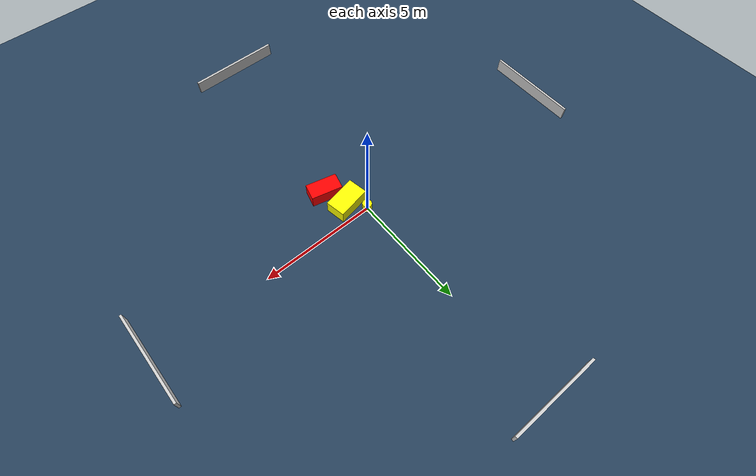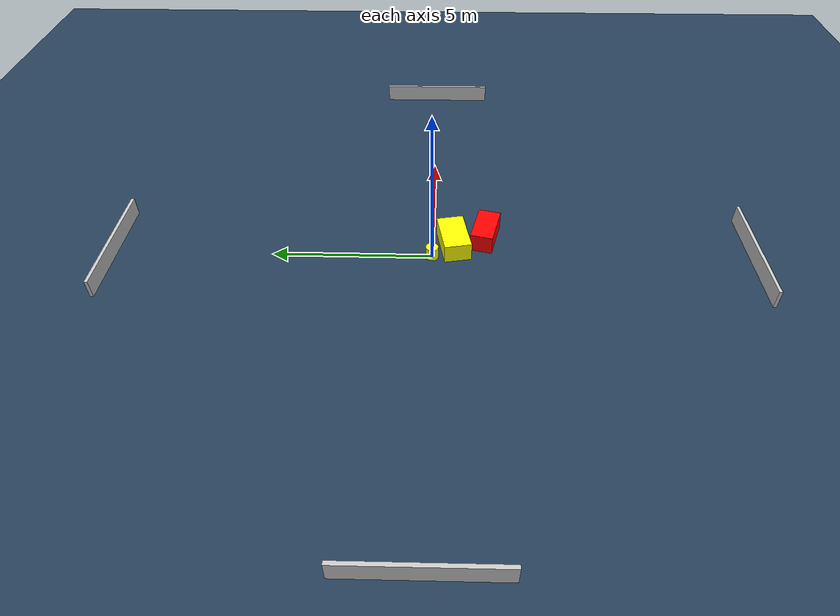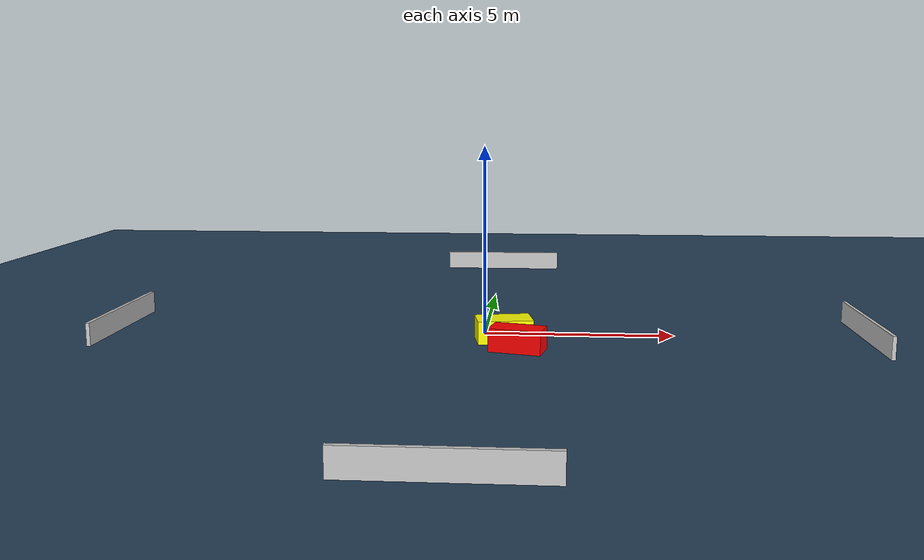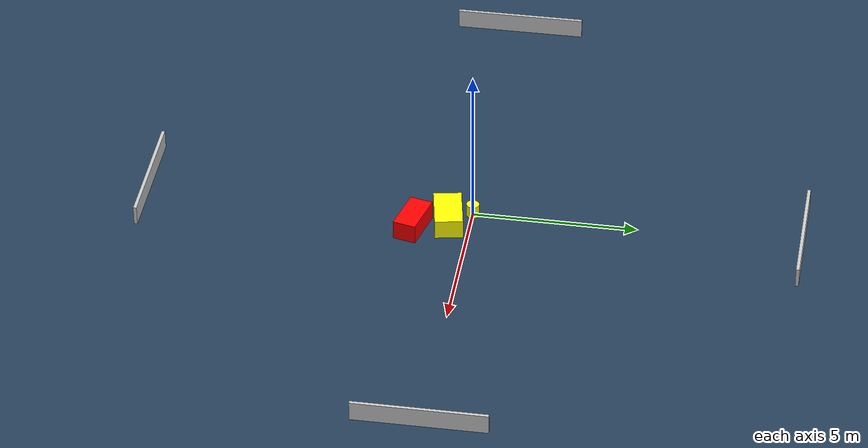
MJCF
<?xml version="1.0" ?>
<mujoco model="generated_environment">
  <option timestep="0.01" integrator="RK4" cone="elliptic"/>
  <default>
    <geom density="1"/>
  </default>
  <asset>
    <texture builtin="gradient" height="3072" name="skybox" rgb1="0.3 0.5 0.7" rgb2="0 0 0" type="skybox" width="512"/>
    <texture builtin="checker" height="300" name="groundplane" rgb1="0.2 0.3 0.4" rgb2="0.1 0.2 0.3" type="2d" width="300"/>
    <material name="groundplane" reflectance="0.2" texrepeat="5 5" texture="groundplane"/>
  </asset>
  <worldbody>
    <light dir="0 0 -1" directional="true" pos="0 0 1.5"/>
    <geom condim="3" friction="0.5 0.005 0.001" material="groundplane" name="floor" pos="0 0 0" size="0 0 0.05" type="plane"/>
    <body name="walls">
      <geom name="wall_1" condim="4" pos="-10.0 0.0 0.3" rgba="0.800000011920929 0.800000011920929 0.800000011920929 1.0" size="0.05 2.0 0.3" type="box"/>
      <geom name="wall_2" condim="4" pos="10.0 0.0 0.3" rgba="0.800000011920929 0.800000011920929 0.800000011920929 1.0" size="0.05 2.0 0.3" type="box"/>
      <geom name="wall_3" condim="4" pos="0.0 -10.0 0.3" rgba="0.800000011920929 0.800000011920929 0.800000011920929 1.0" size="2.0 0.05 0.3" type="box"/>
      <geom name="wall_4" condim="4" pos="0.0 10.0 0.3" rgba="0.800000011920929 0.800000011920929 0.800000011920929 1.0" size="2.0 0.05 0.3" type="box"/>
    </body>
    <body name="robot">
      <joint name="joint_x" type="slide" pos="0 0 0" axis="1 0 0"/>
      <joint name="joint_y" type="slide" pos="0 0 0" axis="0 1 0"/>
      <geom name="robot" type="cylinder" pos="0.0 0.0 0.2" size="0.2 0.2 0.0" mass="5.0" friction="1.0 0.005 0.0001" condim="4" rgba="1.0 1.0 0.0 1.0"/>
    </body>
    <body name="obstacle_1_movable">
      <geom name="obstacle_1_movable" condim="4" pos="0.5337859617181288 -0.6767794716706457 0.3" euler="0 0 10.80980077440817" friction="0.0 0.005 0.001" rgba="1.0 1.0 0.0 1.0" size="0.7240332394037268 0.4268103143474206 0.3" type="box" mass="0.1"/>
      <joint type="free"/>
    </body>
    <body name="obstacle_2_static">
      <geom name="obstacle_2_static" condim="4" pos="0.9257468406572484 -1.6901189120781495 0.3" euler="0 0 256.31048122343236" friction="0.0 0.005 0.001" rgba="1.0 0.0 0.0 1.0" size="0.35536450408872017 0.6752095914425229 0.3" type="box"/>
    </body>
  </worldbody>
  <actuator>
    <motor name="actuator_x" joint="joint_x" gear="1" ctrlrange="-1 1"/>
    <motor name="actuator_y" joint="joint_y" gear="1" ctrlrange="-1 1"/>
  </actuator>
</mujoco>
